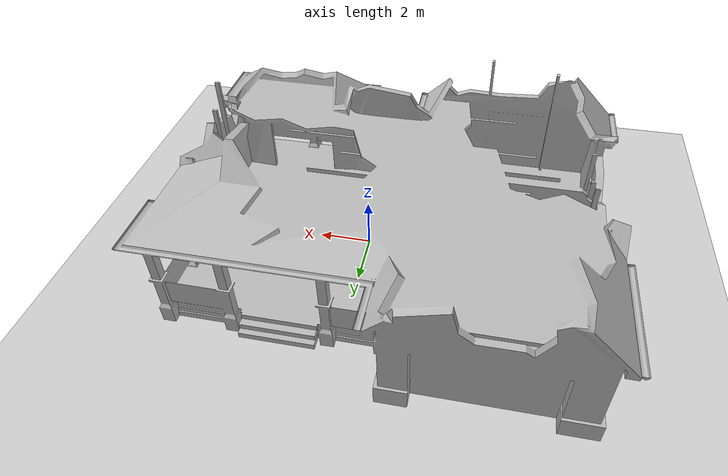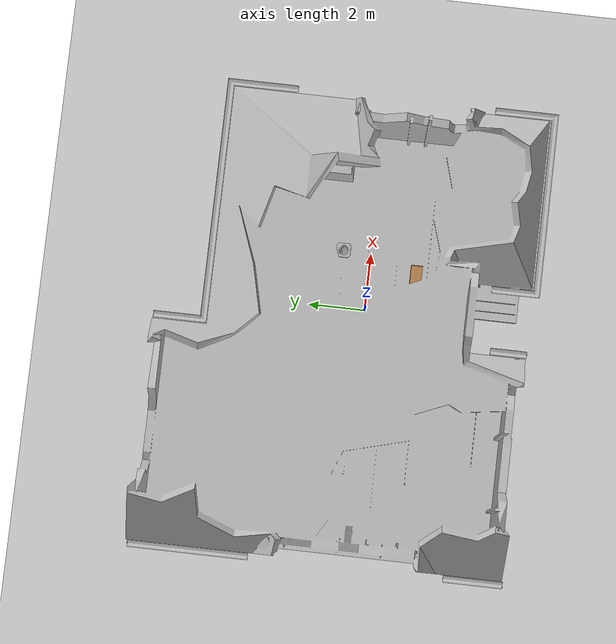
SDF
<sdf version="1.7">
 <world name="default">
  <light name="sun" type="directional">
   <pose>0 0 10 0 -0 0</pose>
   <diffuse>0.8 0.8 0.8 1</diffuse>
   <specular>0.2 0.2 0.2 1</specular>
   <attenuation>
    <range>1000</range>
    <constant>0.9</constant>
    <linear>0.01</linear>
    <quadratic>0.001</quadratic>
   </attenuation>
   <direction>-0.5 0.1 -0.9</direction>
   <spot><inner_angle>0</inner_angle><outer_angle>0</outer_angle><falloff>0</falloff></spot>
  </light>
  <light name="user_directional_light_0" type="directional">
   <pose>3.5 0.5 5 0 -0 0</pose>
   <diffuse>0.5 0.5 0.5 1</diffuse>
   <specular>0.1 0.1 0.1 1</specular>
   <direction>0.1 0.1 -0.9</direction>
   <attenuation>
    <range>20</range>
    <constant>0.5</constant>
    <linear>0.01</linear>
    <quadratic>0.001</quadratic>
   </attenuation>
   <spot><inner_angle>0</inner_angle><outer_angle>0</outer_angle><falloff>0</falloff></spot>
  </light>
  <model name="ground_plane">
   <static>1</static>
   <link name="link">
    <collision name="collision">
     <geometry><plane><normal>0 0 1</normal><size>100 100</size></plane></geometry>
     <surface><friction><ode><mu>100</mu><mu2>50</mu2></ode></friction></surface>
    </collision>
    <visual name="visual">
     <cast_shadows>0</cast_shadows>
     <geometry><plane><normal>0 0 1</normal><size>100 100</size></plane></geometry>
     <material>
      <script><uri>file://media/materials/scripts/gazebo.material</uri><name>Gazebo/Grey</name></script>
     </material>
    </visual>
   </link>
  </model>
  <physics type="ode">
   <real_time_update_rate>1000</real_time_update_rate>
   <max_step_size>0.001</max_step_size>
   <real_time_factor>1</real_time_factor>
   <ode>
    <solver>
     <type>quick</type>
     <iters>150</iters>
     <precon_iters>0</precon_iters>
     <sor>1.4</sor>
     <use_dynamic_moi_rescaling>1</use_dynamic_moi_rescaling>
    </solver>
    <constraints>
     <cfm>1e-05</cfm>
     <erp>0.2</erp>
     <contact_max_correcting_vel>2000</contact_max_correcting_vel>
     <contact_surface_layer>0.01</contact_surface_layer>
    </constraints>
   </ode>
  </physics>
  <gravity>0 0 -9.8</gravity>
  <magnetic_field>6e-06 2.3e-05 -4.2e-05</magnetic_field>
  <atmosphere type="adiabatic"/>
  <scene><ambient>0.4 0.4 0.4 1</ambient><background>0.7 0.7 0.7 1</background><shadows>1</shadows></scene>
  <audio><device>default</device></audio>
  <spherical_coordinates>
   <surface_model>EARTH_WGS84</surface_model>
   <latitude_deg>0</latitude_deg>
   <longitude_deg>0</longitude_deg>
   <elevation>0</elevation>
   <heading_deg>0</heading_deg>
  </spherical_coordinates>
  <model name="collapsed_house">
   <static>1</static>
   <link name="link">
    <collision name="collision">
     <geometry>
      <mesh><scale>1.5 1.5 1.5</scale><uri>model://collapsed_house/meshes/collapsed_house.dae</uri></mesh>
     </geometry>
    </collision>
    <visual name="visual">
     <geometry>
      <mesh><scale>1.5 1.5 1.5</scale><uri>model://collapsed_house/meshes/collapsed_house.dae</uri></mesh>
     </geometry>
    </visual>
   </link>
   <pose>-1.07474 0.643384 0 0 -0 0</pose>
  </model>
  <model name="bookshelf">
   <static>1</static>
   <link name="link">
    <inertial><mass>1</mass></inertial>
    <collision name="back">
     <pose>0 0.005 0.6 0 -0 0</pose>
     <geometry><box><size>0.9 0.01 1.2</size></box></geometry>
    </collision>
    <visual name="visual1">
     <pose>0 0.005 0.6 0 -0 0</pose>
     <geometry><box><size>0.9 0.01 1.2</size></box></geometry>
     <material>
      <script><uri>file://media/materials/scripts/gazebo.material</uri><name>Gazebo/Wood</name></script>
     </material>
    </visual>
    <collision name="left_side">
     <pose>0.45 -0.195 0.6 0 -0 0</pose>
     <geometry><box><size>0.02 0.4 1.2</size></box></geometry>
    </collision>
    <visual name="visual2">
     <pose>0.45 -0.195 0.6 0 -0 0</pose>
     <geometry><box><size>0.02 0.4 1.2</size></box></geometry>
     <material>
      <script><uri>file://media/materials/scripts/gazebo.material</uri><name>Gazebo/Wood</name></script>
     </material>
    </visual>
    <collision name="right_side">
     <pose>-0.45 -0.195 0.6 0 -0 0</pose>
     <geometry><box><size>0.02 0.4 1.2</size></box></geometry>
    </collision>
    <visual name="visual3">
     <pose>-0.45 -0.195 0.6 0 -0 0</pose>
     <geometry><box><size>0.02 0.4 1.2</size></box></geometry>
     <material>
      <script><uri>file://media/materials/scripts/gazebo.material</uri><name>Gazebo/Wood</name></script>
     </material>
    </visual>
    <collision name="bottom">
     <pose>0 -0.195 0.03 0 -0 0</pose>
     <geometry><box><size>0.88 0.4 0.06</size></box></geometry>
    </collision>
    <visual name="visual4">
     <pose>0 -0.195 0.03 0 -0 0</pose>
     <geometry><box><size>0.88 0.4 0.06</size></box></geometry>
     <material>
      <script><uri>file://media/materials/scripts/gazebo.material</uri><name>Gazebo/Wood</name></script>
     </material>
    </visual>
    <collision name="top">
     <pose>0 -0.195 1.19 0 -0 0</pose>
     <geometry><box><size>0.88 0.4 0.02</size></box></geometry>
    </collision>
    <visual name="visual5">
     <pose>0 -0.195 1.19 0 -0 0</pose>
     <geometry><box><size>0.88 0.4 0.02</size></box></geometry>
     <material>
      <script><uri>file://media/materials/scripts/gazebo.material</uri><name>Gazebo/Wood</name></script>
     </material>
    </visual>
    <collision name="low_shelf">
     <pose>0 -0.195 0.43 0 -0 0</pose>
     <geometry><box><size>0.88 0.4 0.02</size></box></geometry>
    </collision>
    <visual name="visual6">
     <pose>0 -0.195 0.43 0 -0 0</pose>
     <geometry><box><size>0.88 0.4 0.02</size></box></geometry>
     <material>
      <script><uri>file://media/materials/scripts/gazebo.material</uri><name>Gazebo/Wood</name></script>
     </material>
    </visual>
    <collision name="high_shelf">
     <pose>0 -0.195 0.8 0 -0 0</pose>
     <geometry><box><size>0.88 0.4 0.02</size></box></geometry>
    </collision>
    <visual name="visual7">
     <pose>0 -0.195 0.8 0 -0 0</pose>
     <geometry><box><size>0.88 0.4 0.02</size></box></geometry>
     <material>
      <script><uri>file://media/materials/scripts/gazebo.material</uri><name>Gazebo/Wood</name></script>
     </material>
    </visual>
   </link>
   <pose>1.19482 -1.4442 0 0 -0 0</pose>
  </model>
  <model name="Construction Barrel">
   <link name="link">
    <inertial>
     <pose>0 0 0.4 0 -0 0</pose>
     <mass>500</mass>
     <inertia><ixx>51.2096</ixx><iyy>51.2096</iyy><izz>25</izz><ixy>0</ixy><ixz>0</ixz><iyz>0</iyz></inertia>
    </inertial>
    <collision name="collision">
     <geometry><mesh><uri>model://construction_barrel/meshes/construction_barrel.dae</uri></mesh></geometry>
    </collision>
    <visual name="visual">
     <geometry><mesh><uri>model://construction_barrel/meshes/construction_barrel.dae</uri></mesh></geometry>
    </visual>
   </link>
   <pose>-0.762757 1.29068 0.781549 1e-06 -9e-06 -0.000209</pose>
  </model>
  <model name="Construction Cone">
   <link name="link">
    <collision name="collision">
     <geometry>
      <mesh><scale>10 10 10</scale><uri>model://construction_cone/meshes/construction_cone.dae</uri></mesh>
     </geometry>
    </collision>
    <visual name="visual">
     <geometry>
      <mesh><scale>10 10 10</scale><uri>model://construction_cone/meshes/construction_cone.dae</uri></mesh>
     </geometry>
    </visual>
    <inertial>
     <inertia><ixx>1</ixx><ixy>0</ixy><ixz>0</ixz><iyy>1</iyy><iyz>0</iyz><izz>1</izz></inertia>
     <mass>1</mass>
    </inertial>
   </link>
   <pose>1.94922 0.981948 0.781553 0 1e-06 0</pose>
  </model>
 </world>
</sdf>
